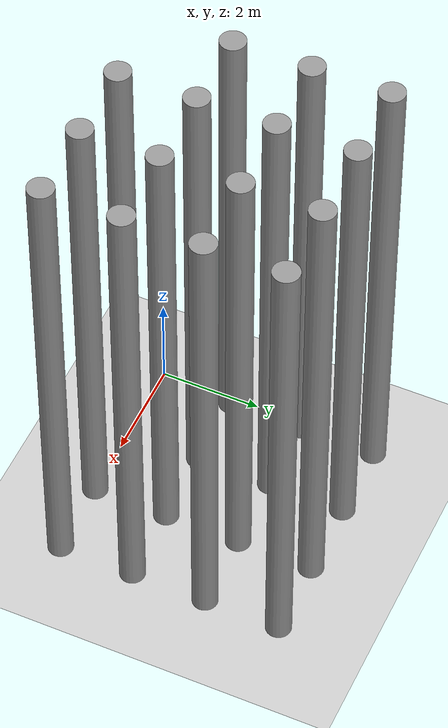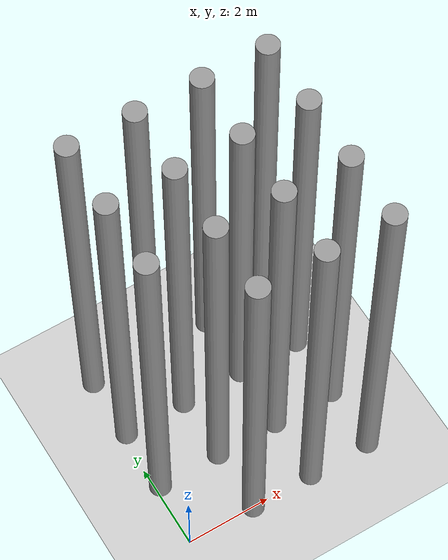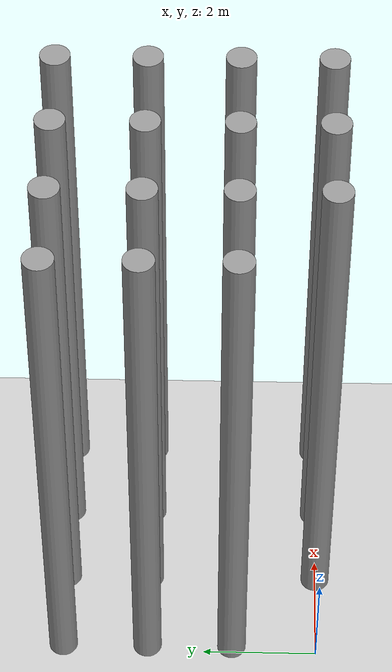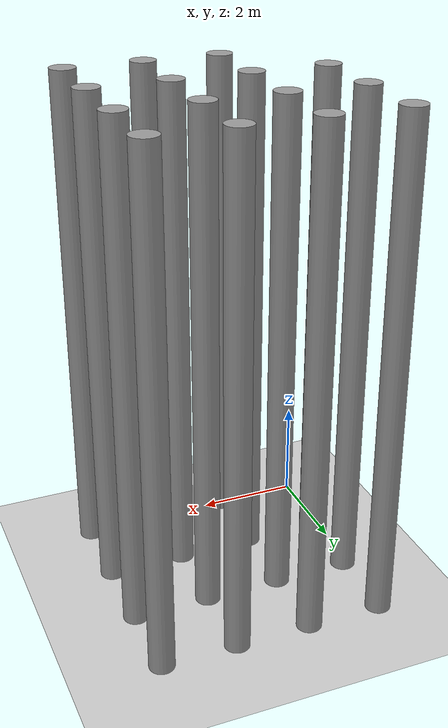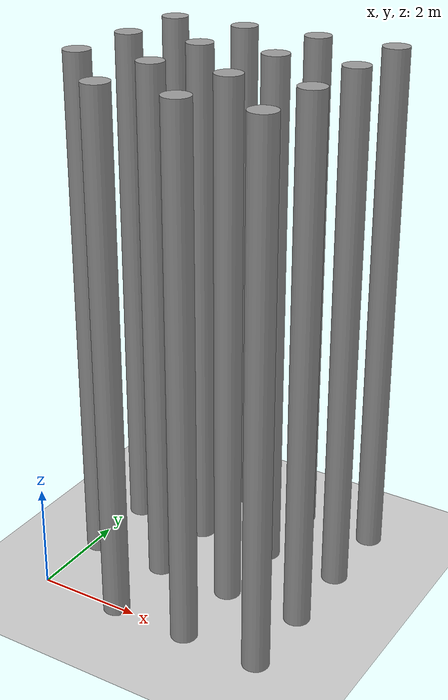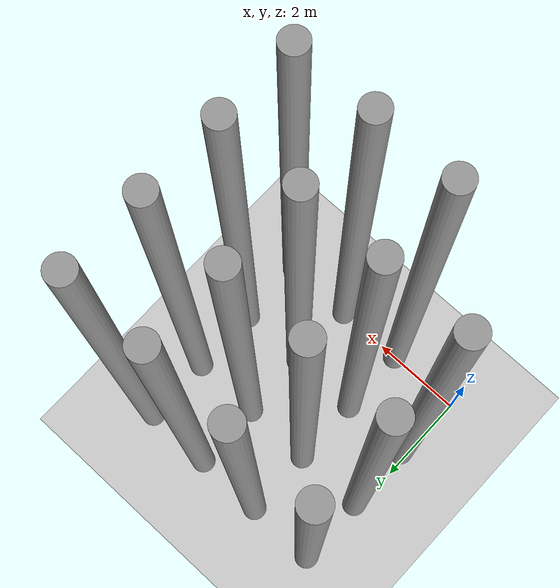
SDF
<sdf version="1.7">
 <world name="default">
  <light name="sun" type="directional">
   <pose>0 0 10 0 -0 0</pose>
   <diffuse>0.8 0.8 0.8 1</diffuse>
   <specular>0.2 0.2 0.2 1</specular>
   <attenuation>
    <range>1000</range>
    <constant>0.9</constant>
    <linear>0.01</linear>
    <quadratic>0.001</quadratic>
   </attenuation>
   <direction>-0.5 0.1 -0.9</direction>
   <spot><inner_angle>0</inner_angle><outer_angle>0</outer_angle><falloff>0</falloff></spot>
  </light>
  <plugin name="ros_interface_plugin" filename="librotors_gazebo_ros_interface_plugin.so"/>
  <model name="ground_plane">
   <static>1</static>
   <link name="link">
    <collision name="collision">
     <geometry><plane><normal>0 0 1</normal><size>100 100</size></plane></geometry>
     <surface>
      <contact><collide_bitmask>65535</collide_bitmask></contact>
      <friction><ode><mu>100</mu><mu2>50</mu2></ode></friction>
     </surface>
    </collision>
    <visual name="visual">
     <cast_shadows>0</cast_shadows>
     <geometry><plane><normal>0 0 1</normal><size>100 100</size></plane></geometry>
     <material>
      <script><uri>file://media/materials/scripts/gazebo.material</uri><name>Gazebo/Grey</name></script>
     </material>
    </visual>
   </link>
  </model>
  <gravity>0 0 -9.8</gravity>
  <magnetic_field>6e-06 2.3e-05 -4.2e-05</magnetic_field>
  <atmosphere type="adiabatic"/>
  <physics name="default_physics" default="0" type="ode">
   <max_step_size>0.001</max_step_size>
   <real_time_factor>1</real_time_factor>
   <real_time_update_rate>1000</real_time_update_rate>
  </physics>
  <scene><ambient>0.4 0.4 0.4 1</ambient><background>0.7 0.7 0.7 1</background><shadows>1</shadows></scene>
  <spherical_coordinates>
   <surface_model>EARTH_WGS84</surface_model>
   <latitude_deg>0</latitude_deg>
   <longitude_deg>0</longitude_deg>
   <elevation>0</elevation>
   <heading_deg>0</heading_deg>
  </spherical_coordinates>
  <model name="qstp.world">
   <link name="link_0">
    <inertial>
     <mass>1e+07</mass>
     <inertia>
      <ixx>8.34896e+07</ixx>
      <ixy>0</ixy>
      <ixz>0</ixz>
      <iyy>8.34896e+07</iyy>
      <iyz>0</iyz>
      <izz>312500</izz>
     </inertia>
    </inertial>
    <pose>-0.9 -0.9 0 0 -0 0</pose>
    <visual name="visual">
     <geometry><cylinder><radius>0.25</radius><length>10</length></cylinder></geometry>
     <material>
      <lighting>1</lighting>
      <script><uri>file://media/materials/scripts/gazebo.material</uri><name>Gazebo/Grey</name></script>
      <shader type="pixel"><normal_map>__default__</normal_map></shader>
      <ambient>0.3 0.3 0.3 1</ambient>
      <diffuse>0.7 0.7 0.7 1</diffuse>
      <specular>0.01 0.01 0.01 1</specular>
      <emissive>0 0 0 1</emissive>
     </material>
    </visual>
    <collision name="collision">
     <geometry><cylinder><radius>0.25</radius><length>10</length></cylinder></geometry>
     <surface>
      <friction>
       <ode><mu>1.12</mu><mu2>1</mu2><fdir1>0 0 0</fdir1><slip1>0</slip1><slip2>0</slip2></ode>
       <torsional>
        <coefficient>1</coefficient>
        <patch_radius>0</patch_radius>
        <surface_radius>0</surface_radius>
        <use_patch_radius>1</use_patch_radius>
        <ode><slip>0</slip></ode>
       </torsional>
      </friction>
      <bounce><restitution_coefficient>0</restitution_coefficient><threshold>1e+06</threshold></bounce>
      <contact>
       <collide_without_contact>0</collide_without_contact>
       <collide_without_contact_bitmask>1</collide_without_contact_bitmask>
       <collide_bitmask>1</collide_bitmask>
       <ode>
        <soft_cfm>0</soft_cfm>
        <soft_erp>0.2</soft_erp>
        <kp>1e+13</kp>
        <kd>1</kd>
        <max_vel>0.01</max_vel>
        <min_depth>0</min_depth>
       </ode>
       <bullet>
        <split_impulse>1</split_impulse>
        <split_impulse_penetration_threshold>-0.01</split_impulse_penetration_threshold>
        <soft_cfm>0</soft_cfm>
        <soft_erp>0.2</soft_erp>
        <kp>1e+13</kp>
        <kd>1</kd>
       </bullet>
      </contact>
     </surface>
    </collision>
   </link>
   <link name="link_0_clone">
    <inertial>
     <mass>1e+07</mass>
     <inertia>
      <ixx>8.34896e+07</ixx>
      <ixy>0</ixy>
      <ixz>0</ixz>
      <iyy>8.34896e+07</iyy>
      <iyz>0</iyz>
      <izz>312500</izz>
     </inertia>
    </inertial>
    <pose>-2.4 -0.9 0 0 -0 0</pose>
    <visual name="visual">
     <geometry><cylinder><radius>0.25</radius><length>10</length></cylinder></geometry>
     <material>
      <lighting>1</lighting>
      <script><uri>file://media/materials/scripts/gazebo.material</uri><name>Gazebo/Grey</name></script>
      <shader type="pixel"><normal_map>__default__</normal_map></shader>
      <ambient>0.3 0.3 0.3 1</ambient>
      <diffuse>0.7 0.7 0.7 1</diffuse>
      <specular>0.01 0.01 0.01 1</specular>
      <emissive>0 0 0 1</emissive>
     </material>
    </visual>
    <collision name="collision">
     <geometry><cylinder><radius>0.25</radius><length>10</length></cylinder></geometry>
     <surface>
      <friction>
       <ode><mu>1</mu><mu2>1</mu2><fdir1>0 0 0</fdir1><slip1>0</slip1><slip2>0</slip2></ode>
       <torsional>
        <coefficient>1</coefficient>
        <patch_radius>0</patch_radius>
        <surface_radius>0</surface_radius>
        <use_patch_radius>1</use_patch_radius>
        <ode><slip>0</slip></ode>
       </torsional>
      </friction>
      <bounce><restitution_coefficient>0</restitution_coefficient><threshold>1e+06</threshold></bounce>
      <contact>
       <collide_without_contact>0</collide_without_contact>
       <collide_without_contact_bitmask>1</collide_without_contact_bitmask>
       <collide_bitmask>1</collide_bitmask>
       <ode>
        <soft_cfm>0</soft_cfm>
        <soft_erp>0.2</soft_erp>
        <kp>1e+13</kp>
        <kd>1</kd>
        <max_vel>0.01</max_vel>
        <min_depth>0</min_depth>
       </ode>
       <bullet>
        <split_impulse>1</split_impulse>
        <split_impulse_penetration_threshold>-0.01</split_impulse_penetration_threshold>
        <soft_cfm>0</soft_cfm>
        <soft_erp>0.2</soft_erp>
        <kp>1e+13</kp>
        <kd>1</kd>
       </bullet>
      </contact>
     </surface>
    </collision>
   </link>
   <link name="link_0_clone_0">
    <inertial>
     <mass>1e+07</mass>
     <inertia>
      <ixx>8.34896e+07</ixx>
      <ixy>0</ixy>
      <ixz>0</ixz>
      <iyy>8.34896e+07</iyy>
      <iyz>0</iyz>
      <izz>312500</izz>
     </inertia>
    </inertial>
    <pose>-0.9 -2.4 0 0 -0 0</pose>
    <visual name="visual">
     <geometry><cylinder><radius>0.25</radius><length>10</length></cylinder></geometry>
     <material>
      <lighting>1</lighting>
      <script><uri>file://media/materials/scripts/gazebo.material</uri><name>Gazebo/Grey</name></script>
      <shader type="pixel"><normal_map>__default__</normal_map></shader>
      <ambient>0.3 0.3 0.3 1</ambient>
      <diffuse>0.7 0.7 0.7 1</diffuse>
      <specular>0.01 0.01 0.01 1</specular>
      <emissive>0 0 0 1</emissive>
     </material>
    </visual>
    <collision name="collision">
     <geometry><cylinder><radius>0.25</radius><length>10</length></cylinder></geometry>
     <surface>
      <friction>
       <ode><mu>1</mu><mu2>1</mu2><fdir1>0 0 0</fdir1><slip1>0</slip1><slip2>0</slip2></ode>
       <torsional>
        <coefficient>1</coefficient>
        <patch_radius>0</patch_radius>
        <surface_radius>0</surface_radius>
        <use_patch_radius>1</use_patch_radius>
        <ode><slip>0</slip></ode>
       </torsional>
      </friction>
      <bounce><restitution_coefficient>0</restitution_coefficient><threshold>1e+06</threshold></bounce>
      <contact>
       <collide_without_contact>0</collide_without_contact>
       <collide_without_contact_bitmask>1</collide_without_contact_bitmask>
       <collide_bitmask>1</collide_bitmask>
       <ode>
        <soft_cfm>0</soft_cfm>
        <soft_erp>0.2</soft_erp>
        <kp>1e+13</kp>
        <kd>1</kd>
        <max_vel>0.01</max_vel>
        <min_depth>0</min_depth>
       </ode>
       <bullet>
        <split_impulse>1</split_impulse>
        <split_impulse_penetration_threshold>-0.01</split_impulse_penetration_threshold>
        <soft_cfm>0</soft_cfm>
        <soft_erp>0.2</soft_erp>
        <kp>1e+13</kp>
        <kd>1</kd>
       </bullet>
      </contact>
     </surface>
    </collision>
   </link>
   <link name="link_0_clone_1">
    <inertial>
     <mass>1e+07</mass>
     <inertia>
      <ixx>8.34896e+07</ixx>
      <ixy>0</ixy>
      <ixz>0</ixz>
      <iyy>8.34896e+07</iyy>
      <iyz>0</iyz>
      <izz>312500</izz>
     </inertia>
    </inertial>
    <pose>0.6 -2.4 0 0 -0 0</pose>
    <visual name="visual">
     <geometry><cylinder><radius>0.25</radius><length>10</length></cylinder></geometry>
     <material>
      <lighting>1</lighting>
      <script><uri>file://media/materials/scripts/gazebo.material</uri><name>Gazebo/Grey</name></script>
      <shader type="pixel"><normal_map>__default__</normal_map></shader>
      <ambient>0.3 0.3 0.3 1</ambient>
      <diffuse>0.7 0.7 0.7 1</diffuse>
      <specular>0.01 0.01 0.01 1</specular>
      <emissive>0 0 0 1</emissive>
     </material>
    </visual>
    <collision name="collision">
     <geometry><cylinder><radius>0.25</radius><length>10</length></cylinder></geometry>
     <surface>
      <friction>
       <ode><mu>1</mu><mu2>1</mu2><fdir1>0 0 0</fdir1><slip1>0</slip1><slip2>0</slip2></ode>
       <torsional>
        <coefficient>1</coefficient>
        <patch_radius>0</patch_radius>
        <surface_radius>0</surface_radius>
        <use_patch_radius>1</use_patch_radius>
        <ode><slip>0</slip></ode>
       </torsional>
      </friction>
      <bounce><restitution_coefficient>0</restitution_coefficient><threshold>1e+06</threshold></bounce>
      <contact>
       <collide_without_contact>0</collide_without_contact>
       <collide_without_contact_bitmask>1</collide_without_contact_bitmask>
       <collide_bitmask>1</collide_bitmask>
       <ode>
        <soft_cfm>0</soft_cfm>
        <soft_erp>0.2</soft_erp>
        <kp>1e+13</kp>
        <kd>1</kd>
        <max_vel>0.01</max_vel>
        <min_depth>0</min_depth>
       </ode>
       <bullet>
        <split_impulse>1</split_impulse>
        <split_impulse_penetration_threshold>-0.01</split_impulse_penetration_threshold>
        <soft_cfm>0</soft_cfm>
        <soft_erp>0.2</soft_erp>
        <kp>1e+13</kp>
        <kd>1</kd>
       </bullet>
      </contact>
     </surface>
    </collision>
   </link>
   <link name="link_0_clone_1_clone">
    <inertial>
     <mass>1e+07</mass>
     <inertia>
      <ixx>8.34896e+07</ixx>
      <ixy>0</ixy>
      <ixz>0</ixz>
      <iyy>8.34896e+07</iyy>
      <iyz>0</iyz>
      <izz>312500</izz>
     </inertia>
    </inertial>
    <pose>2.1 -2.4 0 0 -0 0</pose>
    <visual name="visual">
     <geometry><cylinder><radius>0.25</radius><length>10</length></cylinder></geometry>
     <material>
      <lighting>1</lighting>
      <script><uri>file://media/materials/scripts/gazebo.material</uri><name>Gazebo/Grey</name></script>
      <shader type="pixel"><normal_map>__default__</normal_map></shader>
      <ambient>0.3 0.3 0.3 1</ambient>
      <diffuse>0.7 0.7 0.7 1</diffuse>
      <specular>0.01 0.01 0.01 1</specular>
      <emissive>0 0 0 1</emissive>
     </material>
    </visual>
    <collision name="collision">
     <geometry><cylinder><radius>0.25</radius><length>10</length></cylinder></geometry>
     <surface>
      <friction>
       <ode><mu>1</mu><mu2>1</mu2><fdir1>0 0 0</fdir1><slip1>0</slip1><slip2>0</slip2></ode>
       <torsional>
        <coefficient>1</coefficient>
        <patch_radius>0</patch_radius>
        <surface_radius>0</surface_radius>
        <use_patch_radius>1</use_patch_radius>
        <ode><slip>0</slip></ode>
       </torsional>
      </friction>
      <bounce><restitution_coefficient>0</restitution_coefficient><threshold>1e+06</threshold></bounce>
      <contact>
       <collide_without_contact>0</collide_without_contact>
       <collide_without_contact_bitmask>1</collide_without_contact_bitmask>
       <collide_bitmask>1</collide_bitmask>
       <ode>
        <soft_cfm>0</soft_cfm>
        <soft_erp>0.2</soft_erp>
        <kp>1e+13</kp>
        <kd>1</kd>
        <max_vel>0.01</max_vel>
        <min_depth>0</min_depth>
       </ode>
       <bullet>
        <split_impulse>1</split_impulse>
        <split_impulse_penetration_threshold>-0.01</split_impulse_penetration_threshold>
        <soft_cfm>0</soft_cfm>
        <soft_erp>0.2</soft_erp>
        <kp>1e+13</kp>
        <kd>1</kd>
       </bullet>
      </contact>
     </surface>
    </collision>
   </link>
   <link name="link_0_clone_1_clone_0">
    <inertial>
     <mass>1e+07</mass>
     <inertia>
      <ixx>8.34896e+07</ixx>
      <ixy>0</ixy>
      <ixz>0</ixz>
      <iyy>8.34896e+07</iyy>
      <iyz>0</iyz>
      <izz>312500</izz>
     </inertia>
    </inertial>
    <pose>2.1 0.6 0 0 -0 0</pose>
    <visual name="visual">
     <geometry><cylinder><radius>0.25</radius><length>10</length></cylinder></geometry>
     <material>
      <lighting>1</lighting>
      <script><uri>file://media/materials/scripts/gazebo.material</uri><name>Gazebo/Grey</name></script>
      <shader type="pixel"><normal_map>__default__</normal_map></shader>
      <ambient>0.3 0.3 0.3 1</ambient>
      <diffuse>0.7 0.7 0.7 1</diffuse>
      <specular>0.01 0.01 0.01 1</specular>
      <emissive>0 0 0 1</emissive>
     </material>
    </visual>
    <collision name="collision">
     <geometry><cylinder><radius>0.25</radius><length>10</length></cylinder></geometry>
     <surface>
      <friction>
       <ode><mu>1</mu><mu2>1</mu2><fdir1>0 0 0</fdir1><slip1>0</slip1><slip2>0</slip2></ode>
       <torsional>
        <coefficient>1</coefficient>
        <patch_radius>0</patch_radius>
        <surface_radius>0</surface_radius>
        <use_patch_radius>1</use_patch_radius>
        <ode><slip>0</slip></ode>
       </torsional>
      </friction>
      <bounce><restitution_coefficient>0</restitution_coefficient><threshold>1e+06</threshold></bounce>
      <contact>
       <collide_without_contact>0</collide_without_contact>
       <collide_without_contact_bitmask>1</collide_without_contact_bitmask>
       <collide_bitmask>1</collide_bitmask>
       <ode>
        <soft_cfm>0</soft_cfm>
        <soft_erp>0.2</soft_erp>
        <kp>1e+13</kp>
        <kd>1</kd>
        <max_vel>0.01</max_vel>
        <min_depth>0</min_depth>
       </ode>
       <bullet>
        <split_impulse>1</split_impulse>
        <split_impulse_penetration_threshold>-0.01</split_impulse_penetration_threshold>
        <soft_cfm>0</soft_cfm>
        <soft_erp>0.2</soft_erp>
        <kp>1e+13</kp>
        <kd>1</kd>
       </bullet>
      </contact>
     </surface>
    </collision>
   </link>
   <link name="link_0_clone_1_clone_1">
    <inertial>
     <mass>1e+07</mass>
     <inertia>
      <ixx>8.34896e+07</ixx>
      <ixy>0</ixy>
      <ixz>0</ixz>
      <iyy>8.34896e+07</iyy>
      <iyz>0</iyz>
      <izz>312500</izz>
     </inertia>
    </inertial>
    <pose>2.1 -0.9 0 0 -0 0</pose>
    <visual name="visual">
     <geometry><cylinder><radius>0.25</radius><length>10</length></cylinder></geometry>
     <material>
      <lighting>1</lighting>
      <script><uri>file://media/materials/scripts/gazebo.material</uri><name>Gazebo/Grey</name></script>
      <shader type="pixel"><normal_map>__default__</normal_map></shader>
      <ambient>0.3 0.3 0.3 1</ambient>
      <diffuse>0.7 0.7 0.7 1</diffuse>
      <specular>0.01 0.01 0.01 1</specular>
      <emissive>0 0 0 1</emissive>
     </material>
    </visual>
    <collision name="collision">
     <geometry><cylinder><radius>0.25</radius><length>10</length></cylinder></geometry>
     <surface>
      <friction>
       <ode><mu>1</mu><mu2>1</mu2><fdir1>0 0 0</fdir1><slip1>0</slip1><slip2>0</slip2></ode>
       <torsional>
        <coefficient>1</coefficient>
        <patch_radius>0</patch_radius>
        <surface_radius>0</surface_radius>
        <use_patch_radius>1</use_patch_radius>
        <ode><slip>0</slip></ode>
       </torsional>
      </friction>
      <bounce><restitution_coefficient>0</restitution_coefficient><threshold>1e+06</threshold></bounce>
      <contact>
       <collide_without_contact>0</collide_without_contact>
       <collide_without_contact_bitmask>1</collide_without_contact_bitmask>
       <collide_bitmask>1</collide_bitmask>
       <ode>
        <soft_cfm>0</soft_cfm>
        <soft_erp>0.2</soft_erp>
        <kp>1e+13</kp>
        <kd>1</kd>
        <max_vel>0.01</max_vel>
        <min_depth>0</min_depth>
       </ode>
       <bullet>
        <split_impulse>1</split_impulse>
        <split_impulse_penetration_threshold>-0.01</split_impulse_penetration_threshold>
        <soft_cfm>0</soft_cfm>
        <soft_erp>0.2</soft_erp>
        <kp>1e+13</kp>
        <kd>1</kd>
       </bullet>
      </contact>
     </surface>
    </collision>
   </link>
   <link name="link_0_clone_2">
    <inertial>
     <mass>1e+07</mass>
     <inertia>
      <ixx>8.34896e+07</ixx>
      <ixy>0</ixy>
      <ixz>0</ixz>
      <iyy>8.34896e+07</iyy>
      <iyz>0</iyz>
      <izz>312500</izz>
     </inertia>
    </inertial>
    <pose>0.6 -0.9 0 0 -0 0</pose>
    <visual name="visual">
     <geometry><cylinder><radius>0.25</radius><length>10</length></cylinder></geometry>
     <material>
      <lighting>1</lighting>
      <script><uri>file://media/materials/scripts/gazebo.material</uri><name>Gazebo/Grey</name></script>
      <shader type="pixel"><normal_map>__default__</normal_map></shader>
      <ambient>0.3 0.3 0.3 1</ambient>
      <diffuse>0.7 0.7 0.7 1</diffuse>
      <specular>0.01 0.01 0.01 1</specular>
      <emissive>0 0 0 1</emissive>
     </material>
    </visual>
    <collision name="collision">
     <geometry><cylinder><radius>0.25</radius><length>10</length></cylinder></geometry>
     <surface>
      <friction>
       <ode><mu>1</mu><mu2>1</mu2><fdir1>0 0 0</fdir1><slip1>0</slip1><slip2>0</slip2></ode>
       <torsional>
        <coefficient>1</coefficient>
        <patch_radius>0</patch_radius>
        <surface_radius>0</surface_radius>
        <use_patch_radius>1</use_patch_radius>
        <ode><slip>0</slip></ode>
       </torsional>
      </friction>
      <bounce><restitution_coefficient>0</restitution_coefficient><threshold>1e+06</threshold></bounce>
      <contact>
       <collide_without_contact>0</collide_without_contact>
       <collide_without_contact_bitmask>1</collide_without_contact_bitmask>
       <collide_bitmask>1</collide_bitmask>
       <ode>
        <soft_cfm>0</soft_cfm>
        <soft_erp>0.2</soft_erp>
        <kp>1e+13</kp>
        <kd>1</kd>
        <max_vel>0.01</max_vel>
        <min_depth>0</min_depth>
       </ode>
       <bullet>
        <split_impulse>1</split_impulse>
        <split_impulse_penetration_threshold>-0.01</split_impulse_penetration_threshold>
        <soft_cfm>0</soft_cfm>
        <soft_erp>0.2</soft_erp>
        <kp>1e+13</kp>
        <kd>1</kd>
       </bullet>
      </contact>
     </surface>
    </collision>
   </link>
   <link name="link_0_clone_2_clone">
    <inertial>
     <mass>1e+07</mass>
     <inertia>
      <ixx>8.34896e+07</ixx>
      <ixy>0</ixy>
      <ixz>0</ixz>
      <iyy>8.34896e+07</iyy>
      <iyz>0</iyz>
      <izz>312500</izz>
     </inertia>
    </inertial>
    <pose>0.6 0.6 0 0 -0 0</pose>
    <visual name="visual">
     <geometry><cylinder><radius>0.25</radius><length>10</length></cylinder></geometry>
     <material>
      <lighting>1</lighting>
      <script><uri>file://media/materials/scripts/gazebo.material</uri><name>Gazebo/Grey</name></script>
      <shader type="pixel"><normal_map>__default__</normal_map></shader>
      <ambient>0.3 0.3 0.3 1</ambient>
      <diffuse>0.7 0.7 0.7 1</diffuse>
      <specular>0.01 0.01 0.01 1</specular>
      <emissive>0 0 0 1</emissive>
     </material>
    </visual>
    <collision name="collision">
     <geometry><cylinder><radius>0.25</radius><length>10</length></cylinder></geometry>
     <surface>
      <friction>
       <ode><mu>1</mu><mu2>1</mu2><fdir1>0 0 0</fdir1><slip1>0</slip1><slip2>0</slip2></ode>
       <torsional>
        <coefficient>1</coefficient>
        <patch_radius>0</patch_radius>
        <surface_radius>0</surface_radius>
        <use_patch_radius>1</use_patch_radius>
        <ode><slip>0</slip></ode>
       </torsional>
      </friction>
      <bounce><restitution_coefficient>0</restitution_coefficient><threshold>1e+06</threshold></bounce>
      <contact>
       <collide_without_contact>0</collide_without_contact>
       <collide_without_contact_bitmask>1</collide_without_contact_bitmask>
       <collide_bitmask>1</collide_bitmask>
       <ode>
        <soft_cfm>0</soft_cfm>
        <soft_erp>0.2</soft_erp>
        <kp>1e+13</kp>
        <kd>1</kd>
        <max_vel>0.01</max_vel>
        <min_depth>0</min_depth>
       </ode>
       <bullet>
        <split_impulse>1</split_impulse>
        <split_impulse_penetration_threshold>-0.01</split_impulse_penetration_threshold>
        <soft_cfm>0</soft_cfm>
        <soft_erp>0.2</soft_erp>
        <kp>1e+13</kp>
        <kd>1</kd>
       </bullet>
      </contact>
     </surface>
    </collision>
   </link>
   <link name="link_0_clone_clone">
    <inertial>
     <mass>1e+07</mass>
     <inertia>
      <ixx>8.34896e+07</ixx>
      <ixy>0</ixy>
      <ixz>0</ixz>
      <iyy>8.34896e+07</iyy>
      <iyz>0</iyz>
      <izz>312500</izz>
     </inertia>
    </inertial>
    <pose>-2.4 0.6 0 0 -0 0</pose>
    <visual name="visual">
     <geometry><cylinder><radius>0.25</radius><length>10</length></cylinder></geometry>
     <material>
      <lighting>1</lighting>
      <script><uri>file://media/materials/scripts/gazebo.material</uri><name>Gazebo/Grey</name></script>
      <shader type="pixel"><normal_map>__default__</normal_map></shader>
      <ambient>0.3 0.3 0.3 1</ambient>
      <diffuse>0.7 0.7 0.7 1</diffuse>
      <specular>0.01 0.01 0.01 1</specular>
      <emissive>0 0 0 1</emissive>
     </material>
    </visual>
    <collision name="collision">
     <geometry><cylinder><radius>0.25</radius><length>10</length></cylinder></geometry>
     <surface>
      <friction>
       <ode><mu>1</mu><mu2>1</mu2><fdir1>0 0 0</fdir1><slip1>0</slip1><slip2>0</slip2></ode>
       <torsional>
        <coefficient>1</coefficient>
        <patch_radius>0</patch_radius>
        <surface_radius>0</surface_radius>
        <use_patch_radius>1</use_patch_radius>
        <ode><slip>0</slip></ode>
       </torsional>
      </friction>
      <bounce><restitution_coefficient>0</restitution_coefficient><threshold>1e+06</threshold></bounce>
      <contact>
       <collide_without_contact>0</collide_without_contact>
       <collide_without_contact_bitmask>1</collide_without_contact_bitmask>
       <collide_bitmask>1</collide_bitmask>
       <ode>
        <soft_cfm>0</soft_cfm>
        <soft_erp>0.2</soft_erp>
        <kp>1e+13</kp>
        <kd>1</kd>
        <max_vel>0.01</max_vel>
        <min_depth>0</min_depth>
       </ode>
       <bullet>
        <split_impulse>1</split_impulse>
        <split_impulse_penetration_threshold>-0.01</split_impulse_penetration_threshold>
        <soft_cfm>0</soft_cfm>
        <soft_erp>0.2</soft_erp>
        <kp>1e+13</kp>
        <kd>1</kd>
       </bullet>
      </contact>
     </surface>
    </collision>
   </link>
   <link name="link_0_clone_clone_clone">
    <inertial>
     <mass>1e+07</mass>
     <inertia>
      <ixx>8.34896e+07</ixx>
      <ixy>0</ixy>
      <ixz>0</ixz>
      <iyy>8.34896e+07</iyy>
      <iyz>0</iyz>
      <izz>312500</izz>
     </inertia>
    </inertial>
    <pose>-0.9 0.6 0 0 -0 0</pose>
    <visual name="visual">
     <geometry><cylinder><radius>0.25</radius><length>10</length></cylinder></geometry>
     <material>
      <lighting>1</lighting>
      <script><uri>file://media/materials/scripts/gazebo.material</uri><name>Gazebo/Grey</name></script>
      <shader type="pixel"><normal_map>__default__</normal_map></shader>
      <ambient>0.3 0.3 0.3 1</ambient>
      <diffuse>0.7 0.7 0.7 1</diffuse>
      <specular>0.01 0.01 0.01 1</specular>
      <emissive>0 0 0 1</emissive>
     </material>
    </visual>
    <collision name="collision">
     <geometry><cylinder><radius>0.25</radius><length>10</length></cylinder></geometry>
     <surface>
      <friction>
       <ode><mu>1</mu><mu2>1</mu2><fdir1>0 0 0</fdir1><slip1>0</slip1><slip2>0</slip2></ode>
       <torsional>
        <coefficient>1</coefficient>
        <patch_radius>0</patch_radius>
        <surface_radius>0</surface_radius>
        <use_patch_radius>1</use_patch_radius>
        <ode><slip>0</slip></ode>
       </torsional>
      </friction>
      <bounce><restitution_coefficient>0</restitution_coefficient><threshold>1e+06</threshold></bounce>
      <contact>
       <collide_without_contact>0</collide_without_contact>
       <collide_without_contact_bitmask>1</collide_without_contact_bitmask>
       <collide_bitmask>1</collide_bitmask>
       <ode>
        <soft_cfm>0</soft_cfm>
        <soft_erp>0.2</soft_erp>
        <kp>1e+13</kp>
        <kd>1</kd>
        <max_vel>0.01</max_vel>
        <min_depth>0</min_depth>
       </ode>
       <bullet>
        <split_impulse>1</split_impulse>
        <split_impulse_penetration_threshold>-0.01</split_impulse_penetration_threshold>
        <soft_cfm>0</soft_cfm>
        <soft_erp>0.2</soft_erp>
        <kp>1e+13</kp>
        <kd>1</kd>
       </bullet>
      </contact>
     </surface>
    </collision>
   </link>
   <link name="link_0_clone_clone_clone_0">
    <inertial>
     <mass>1e+07</mass>
     <inertia>
      <ixx>8.34896e+07</ixx>
      <ixy>0</ixy>
      <ixz>0</ixz>
      <iyy>8.34896e+07</iyy>
      <iyz>0</iyz>
      <izz>312500</izz>
     </inertia>
    </inertial>
    <pose>-2.4 2.1 0 0 -0 0</pose>
    <visual name="visual">
     <geometry><cylinder><radius>0.25</radius><length>10</length></cylinder></geometry>
     <material>
      <lighting>1</lighting>
      <script><uri>file://media/materials/scripts/gazebo.material</uri><name>Gazebo/Grey</name></script>
      <shader type="pixel"><normal_map>__default__</normal_map></shader>
      <ambient>0.3 0.3 0.3 1</ambient>
      <diffuse>0.7 0.7 0.7 1</diffuse>
      <specular>0.01 0.01 0.01 1</specular>
      <emissive>0 0 0 1</emissive>
     </material>
    </visual>
    <collision name="collision">
     <geometry><cylinder><radius>0.25</radius><length>10</length></cylinder></geometry>
     <surface>
      <friction>
       <ode><mu>1</mu><mu2>1</mu2><fdir1>0 0 0</fdir1><slip1>0</slip1><slip2>0</slip2></ode>
       <torsional>
        <coefficient>1</coefficient>
        <patch_radius>0</patch_radius>
        <surface_radius>0</surface_radius>
        <use_patch_radius>1</use_patch_radius>
        <ode><slip>0</slip></ode>
       </torsional>
      </friction>
      <bounce><restitution_coefficient>0</restitution_coefficient><threshold>1e+06</threshold></bounce>
      <contact>
       <collide_without_contact>0</collide_without_contact>
       <collide_without_contact_bitmask>1</collide_without_contact_bitmask>
       <collide_bitmask>1</collide_bitmask>
       <ode>
        <soft_cfm>0</soft_cfm>
        <soft_erp>0.2</soft_erp>
        <kp>1e+13</kp>
        <kd>1</kd>
        <max_vel>0.01</max_vel>
        <min_depth>0</min_depth>
       </ode>
       <bullet>
        <split_impulse>1</split_impulse>
        <split_impulse_penetration_threshold>-0.01</split_impulse_penetration_threshold>
        <soft_cfm>0</soft_cfm>
        <soft_erp>0.2</soft_erp>
        <kp>1e+13</kp>
        <kd>1</kd>
       </bullet>
      </contact>
     </surface>
    </collision>
   </link>
   <link name="link_0_clone_clone_clone_1">
    <inertial>
     <mass>1e+07</mass>
     <inertia>
      <ixx>8.34896e+07</ixx>
      <ixy>0</ixy>
      <ixz>0</ixz>
      <iyy>8.34896e+07</iyy>
      <iyz>0</iyz>
      <izz>312500</izz>
     </inertia>
    </inertial>
    <pose>-0.9 2.1 0 0 -0 0</pose>
    <visual name="visual">
     <geometry><cylinder><radius>0.25</radius><length>10</length></cylinder></geometry>
     <material>
      <lighting>1</lighting>
      <script><uri>file://media/materials/scripts/gazebo.material</uri><name>Gazebo/Grey</name></script>
      <shader type="pixel"><normal_map>__default__</normal_map></shader>
      <ambient>0.3 0.3 0.3 1</ambient>
      <diffuse>0.7 0.7 0.7 1</diffuse>
      <specular>0.01 0.01 0.01 1</specular>
      <emissive>0 0 0 1</emissive>
     </material>
    </visual>
    <collision name="collision">
     <geometry><cylinder><radius>0.25</radius><length>10</length></cylinder></geometry>
     <surface>
      <friction>
       <ode><mu>1</mu><mu2>1</mu2><fdir1>0 0 0</fdir1><slip1>0</slip1><slip2>0</slip2></ode>
       <torsional>
        <coefficient>1</coefficient>
        <patch_radius>0</patch_radius>
        <surface_radius>0</surface_radius>
        <use_patch_radius>1</use_patch_radius>
        <ode><slip>0</slip></ode>
       </torsional>
      </friction>
      <bounce><restitution_coefficient>0</restitution_coefficient><threshold>1e+06</threshold></bounce>
      <contact>
       <collide_without_contact>0</collide_without_contact>
       <collide_without_contact_bitmask>1</collide_without_contact_bitmask>
       <collide_bitmask>1</collide_bitmask>
       <ode>
        <soft_cfm>0</soft_cfm>
        <soft_erp>0.2</soft_erp>
        <kp>1e+13</kp>
        <kd>1</kd>
        <max_vel>0.01</max_vel>
        <min_depth>0</min_depth>
       </ode>
       <bullet>
        <split_impulse>1</split_impulse>
        <split_impulse_penetration_threshold>-0.01</split_impulse_penetration_threshold>
        <soft_cfm>0</soft_cfm>
        <soft_erp>0.2</soft_erp>
        <kp>1e+13</kp>
        <kd>1</kd>
       </bullet>
      </contact>
     </surface>
    </collision>
   </link>
   <link name="link_0_clone_clone_clone_2">
    <inertial>
     <mass>1e+07</mass>
     <inertia>
      <ixx>8.34896e+07</ixx>
      <ixy>0</ixy>
      <ixz>0</ixz>
      <iyy>8.34896e+07</iyy>
      <iyz>0</iyz>
      <izz>312500</izz>
     </inertia>
    </inertial>
    <pose>0.6 2.1 0 0 -0 0</pose>
    <visual name="visual">
     <geometry><cylinder><radius>0.25</radius><length>10</length></cylinder></geometry>
     <material>
      <lighting>1</lighting>
      <script><uri>file://media/materials/scripts/gazebo.material</uri><name>Gazebo/Grey</name></script>
      <shader type="pixel"><normal_map>__default__</normal_map></shader>
      <ambient>0.3 0.3 0.3 1</ambient>
      <diffuse>0.7 0.7 0.7 1</diffuse>
      <specular>0.01 0.01 0.01 1</specular>
      <emissive>0 0 0 1</emissive>
     </material>
    </visual>
    <collision name="collision">
     <geometry><cylinder><radius>0.25</radius><length>10</length></cylinder></geometry>
     <surface>
      <friction>
       <ode><mu>1</mu><mu2>1</mu2><fdir1>0 0 0</fdir1><slip1>0</slip1><slip2>0</slip2></ode>
       <torsional>
        <coefficient>1</coefficient>
        <patch_radius>0</patch_radius>
        <surface_radius>0</surface_radius>
        <use_patch_radius>1</use_patch_radius>
        <ode><slip>0</slip></ode>
       </torsional>
      </friction>
      <bounce><restitution_coefficient>0</restitution_coefficient><threshold>1e+06</threshold></bounce>
      <contact>
       <collide_without_contact>0</collide_without_contact>
       <collide_without_contact_bitmask>1</collide_without_contact_bitmask>
       <collide_bitmask>1</collide_bitmask>
       <ode>
        <soft_cfm>0</soft_cfm>
        <soft_erp>0.2</soft_erp>
        <kp>1e+13</kp>
        <kd>1</kd>
        <max_vel>0.01</max_vel>
        <min_depth>0</min_depth>
       </ode>
       <bullet>
        <split_impulse>1</split_impulse>
        <split_impulse_penetration_threshold>-0.01</split_impulse_penetration_threshold>
        <soft_cfm>0</soft_cfm>
        <soft_erp>0.2</soft_erp>
        <kp>1e+13</kp>
        <kd>1</kd>
       </bullet>
      </contact>
     </surface>
    </collision>
   </link>
   <link name="link_0_clone_clone_clone_3">
    <inertial>
     <mass>1e+07</mass>
     <inertia>
      <ixx>8.34896e+07</ixx>
      <ixy>0</ixy>
      <ixz>0</ixz>
      <iyy>8.34896e+07</iyy>
      <iyz>0</iyz>
      <izz>312500</izz>
     </inertia>
    </inertial>
    <pose>2.1 2.1 0 0 -0 0</pose>
    <visual name="visual">
     <geometry><cylinder><radius>0.25</radius><length>10</length></cylinder></geometry>
     <material>
      <lighting>1</lighting>
      <script><uri>file://media/materials/scripts/gazebo.material</uri><name>Gazebo/Grey</name></script>
      <shader type="pixel"><normal_map>__default__</normal_map></shader>
      <ambient>0.3 0.3 0.3 1</ambient>
      <diffuse>0.7 0.7 0.7 1</diffuse>
      <specular>0.01 0.01 0.01 1</specular>
      <emissive>0 0 0 1</emissive>
     </material>
    </visual>
    <collision name="collision">
     <geometry><cylinder><radius>0.25</radius><length>10</length></cylinder></geometry>
     <surface>
      <friction>
       <ode><mu>1</mu><mu2>1</mu2><fdir1>0 0 0</fdir1><slip1>0</slip1><slip2>0</slip2></ode>
       <torsional>
        <coefficient>1</coefficient>
        <patch_radius>0</patch_radius>
        <surface_radius>0</surface_radius>
        <use_patch_radius>1</use_patch_radius>
        <ode><slip>0</slip></ode>
       </torsional>
      </friction>
      <bounce><restitution_coefficient>0</restitution_coefficient><threshold>1e+06</threshold></bounce>
      <contact>
       <collide_without_contact>0</collide_without_contact>
       <collide_without_contact_bitmask>1</collide_without_contact_bitmask>
       <collide_bitmask>1</collide_bitmask>
       <ode>
        <soft_cfm>0</soft_cfm>
        <soft_erp>0.2</soft_erp>
        <kp>1e+13</kp>
        <kd>1</kd>
        <max_vel>0.01</max_vel>
        <min_depth>0</min_depth>
       </ode>
       <bullet>
        <split_impulse>1</split_impulse>
        <split_impulse_penetration_threshold>-0.01</split_impulse_penetration_threshold>
        <soft_cfm>0</soft_cfm>
        <soft_erp>0.2</soft_erp>
        <kp>1e+13</kp>
        <kd>1</kd>
       </bullet>
      </contact>
     </surface>
    </collision>
   </link>
   <static>0</static>
   <pose>2.53236 2.40205 4.99993 0 -0 0</pose>
  </model>
 </world>
</sdf>
